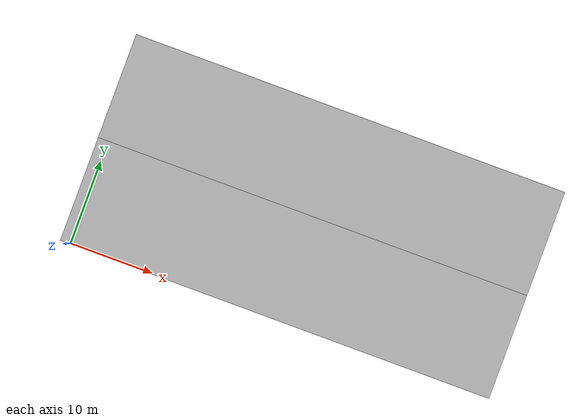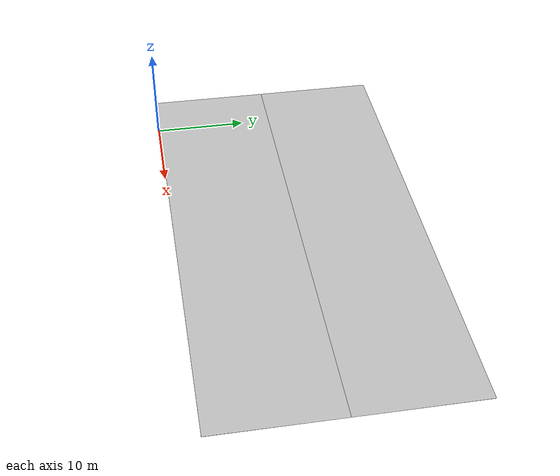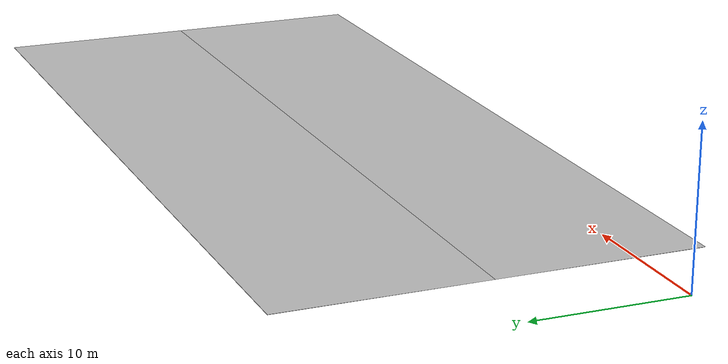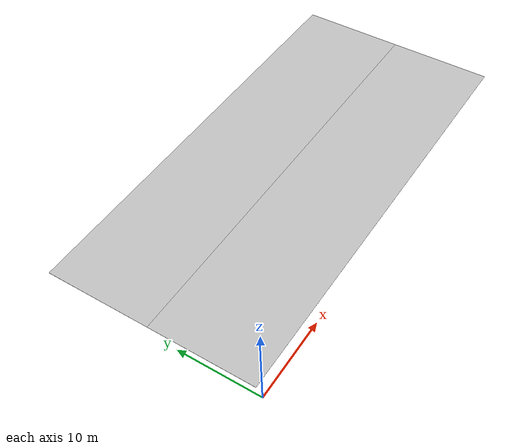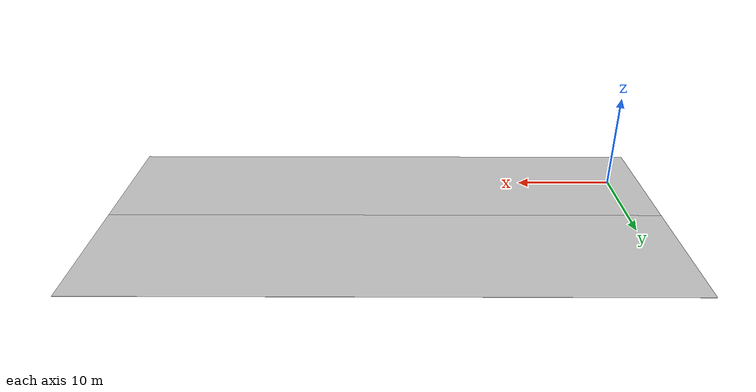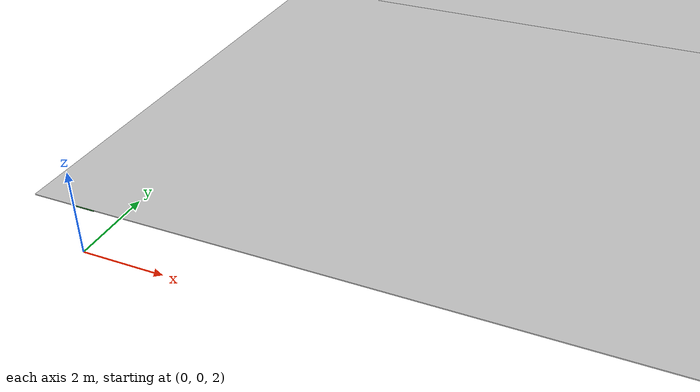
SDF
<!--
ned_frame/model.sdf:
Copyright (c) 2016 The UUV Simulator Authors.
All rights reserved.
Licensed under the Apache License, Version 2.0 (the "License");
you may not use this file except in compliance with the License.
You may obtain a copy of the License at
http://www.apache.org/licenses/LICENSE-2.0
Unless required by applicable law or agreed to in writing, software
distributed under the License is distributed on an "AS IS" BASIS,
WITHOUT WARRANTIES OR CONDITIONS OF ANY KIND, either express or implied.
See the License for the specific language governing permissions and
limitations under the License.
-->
<?xml version="1.0" ?>
<sdf version='1.4'>
  <world name='water'>

    <gravity>0 0 -9.8</gravity>
    <magnetic_field>6e-06 2.3e-05 -4.2e-05</magnetic_field>
    <atmosphere type='adiabatic'/>
    <physics name='default_physics' default='0' type='ode'>
      <max_step_size>0.001</max_step_size>
      <real_time_factor>1</real_time_factor>
      <real_time_update_rate>1000</real_time_update_rate>
    </physics>

    <scene>
      <ambient>110 130 150 255</ambient>
      <sky>
        <clouds>
          <speed>12</speed>
        </clouds>
      </sky>
      <shadows>1</shadows>

      <!-- Fog parameters -->
      <fog>
        <color>0.1 0.2 0.3 1.0</color>
        <type>linear</type>
        <density>20</density>
        <start>1</start>
        <end>35</end>
      </fog>
    </scene>

    <!-- Global light source -->
    <light type="directional" name="sun1">
      <pose>25 12.5 50 0 0 0</pose>
      <diffuse>1 1 1 1</diffuse>
      <specular>.1 .1 .1 1</specular>
      <direction>0.3 0.3 -1</direction>
      <cast_shadows>false</cast_shadows>
    </light>

    <!-- Global light source -->
    <light type="directional" name="sun_diffuse">
      <pose>25 12.5 1.8 0 0 0</pose>
      <diffuse>0.6 0.6 0.6 1</diffuse>
      <specular>0 0 0 1</specular>
      <direction>-0.3 -0.3 -1</direction>
      <cast_shadows>false</cast_shadows>
    </light>

    <!-- Virtual NED frame -->
    <include>
      <uri>model://ned_frame</uri>
      <pose>0 0 3.2 0 0 0</pose>
    </include>

    <!-- Bounding sea surface -->
    <include>
      <uri>model://sea_surface</uri>
      <pose>0 0 3.2 0 0 0</pose>
    </include>

    <!-- Focus camera on tall pendulum -->
    <gui fullscreen='0'>
      <camera name='user_camera'>
        <pose>5.75113 16.9115 2.6 0 0.12 -0.228776</pose>
        <view_controller>orbit</view_controller>
      </camera>
    </gui>

  </world>
</sdf>

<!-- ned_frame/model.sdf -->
<sdf version='1.5'>
    <model name="world_ned">

      <pose>0 0 0 0 0 0</pose>
      <static>true</static>

      <link name="world_ned">
        <gravity>0</gravity>
        <pose>0 0 0 3.14159265359 0 1.5707963267948966</pose>

        <visual name="N_visual">
          <pose>0.25 0 0 1.5707963267948966 0 1.5707963267948966</pose>
          <geometry>
            <cylinder>
              <radius>0.01</radius>
              <length>0.5</length>
            </cylinder>
          </geometry>
          <material>
            <script>
              <uri>file://media/materials/scripts/gazebo.material</uri>
              <name>Gazebo/Red</name>
            </script>
          </material>
        </visual>

        <visual name="E_visual">
          <pose>0 0.25 0 1.5707963267948966 0 0</pose>
          <geometry>
            <cylinder>
              <radius>0.01</radius>
              <length>0.5</length>
            </cylinder>
          </geometry>
          <material>
            <script>
              <uri>file://media/materials/scripts/gazebo.material</uri>
              <name>Gazebo/Green</name>
            </script>
          </material>
        </visual>

        <visual name="D_visual">
          <pose>0 0 0.25 0 0 0</pose>
          <geometry>
            <cylinder>
              <radius>0.01</radius>
              <length>0.5</length>
            </cylinder>
          </geometry>
          <material>
            <script>
              <uri>file://media/materials/scripts/gazebo.material</uri>
              <name>Gazebo/Blue</name>
            </script>
          </material>
        </visual>
      </link>
    </model>
</sdf>

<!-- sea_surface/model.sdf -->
<sdf version="1.5">
  <model name="sea_surface">
    <static>true</static>
    <link name="sea_bottom">
      <visual name="ocean_surface">
        <pose>25 12.5 0 0 0 0</pose>
        <cast_shadows>false</cast_shadows>
        <geometry>
          <mesh>
            <uri>file://Media/models/sea_surface_1000m_x_1000m.dae</uri>
            <scale>0.052 0.025 0.07</scale>
          </mesh>
        </geometry>
        <material>
          <script>
            <uri>file://Media/materials/scripts/waves.material</uri>
            <name>UUVSimulator/SimpleWaves</name>
          </script>
        </material>
      </visual>

      <visual name="ocean_below">
        <pose>25 12.5 0 3.14 0 0</pose>
        <cast_shadows>false</cast_shadows>
        <geometry>
          <mesh>
            <uri>file://Media/models/sea_surface_1000m_x_1000m.dae</uri>
            <scale>0.052 0.025 0.07</scale>
          </mesh>
        </geometry>
        <material>
          <script>
            <uri>file://Media/materials/scripts/water.material</uri>
            <name>UUVSimulator/StaticWater</name>
          </script>
        </material>
      </visual>
    </link>
  </model>
</sdf>
